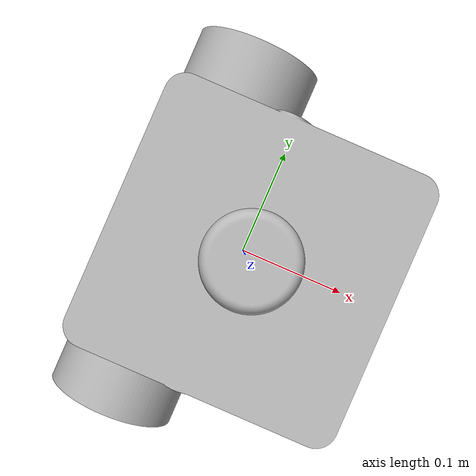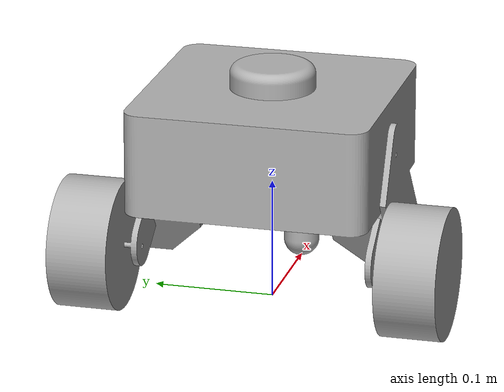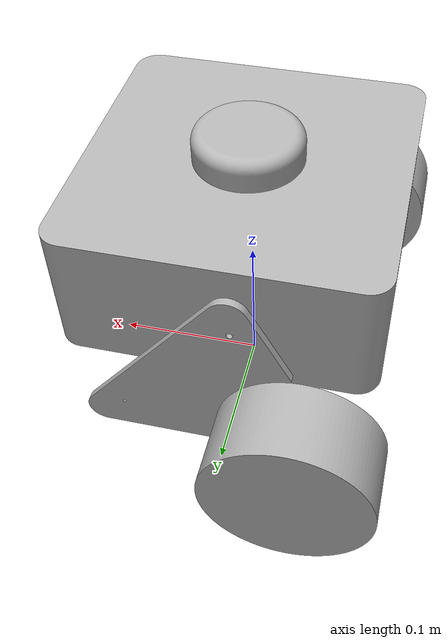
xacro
<?xml version="1.0" ?>
<robot name="walle" xmlns:xacro="http://www.ros.org/wiki/xacro">

<xacro:arg name="is_ignition" default="true"/>

<xacro:arg name="is_sim" default="true"/>

<xacro:include filename="$(find walle_description)/urdf/materials.xacro" />
<xacro:include filename="$(find walle_description)/urdf/walle_ros2_control.xacro" />
<xacro:include filename="$(find walle_description)/urdf/walle_gazebo.xacro" />

<link name="base_footprint"/>

<link name="base_link">
  <inertial>
    <origin xyz="-0.00045685530729292265 0.0004136281243083317 0.11948332647769622" rpy="0 0 0"/>
    <mass value="4.791704659790887"/>
    <inertia ixx="0.036131" iyy="0.02501" izz="0.044487" ixy="0.0" iyz="5e-06" ixz="-5.5e-05"/>
  </inertial>
  <visual>
    <origin xyz="0 0 -0.054001" rpy="0 0 0"/>
    <geometry>
      <mesh filename="file://$(find walle_description)/meshes/base_link.stl" scale="0.001 0.001 0.001"/>
    </geometry>
    <material name="silver"/>
  </visual>
  <collision>
    <origin xyz="0 0 0" rpy="0 0 0"/>
    <geometry>
      <mesh filename="file://$(find walle_description)/meshes/base_link.stl" scale="0.001 0.001 0.001"/>
    </geometry>
  </collision>
</link>

<joint name="base_joint" type="fixed">
  <parent link="base_footprint"/>
  <child link="base_link" />
  <origin xyz="0 0 0.054001" rpy="0 0 0"/>
</joint>

<link name="left_wheel_1">
  <inertial>
    <origin xyz="3.3467447201757095e-07 0.024999627663606278 1.808861906857362e-07" rpy="0 0 0"/>
    <mass value="3.5956470398131257"/>
    <inertia ixx="0.00337" iyy="0.005242" izz="0.00337" ixy="-0.0" iyz="0.0" ixz="0.0"/>
  </inertial>
  <visual>
    <origin xyz="0.055614 -0.110181 -0.054001" rpy="0 0 0"/>
    <geometry>
      <mesh filename="file://$(find walle_description)/meshes/left_wheel_1.stl" scale="0.001 0.001 0.001"/>
    </geometry>
    <material name="silver"/>
  </visual>
  <collision>
    <origin xyz="0.055614 -0.110181 -0.054001" rpy="0 0 0"/>
    <geometry>
      <mesh filename="file://$(find walle_description)/meshes/left_wheel_1.stl" scale="0.001 0.001 0.001"/>
    </geometry>
  </collision>
</link>

<link name="right_wheel_1">
  <inertial>
    <origin xyz="3.346744719828765e-07 -0.025000051385102237 1.8088619053308053e-07" rpy="0 0 0"/>
    <mass value="3.5956470398131253"/>
    <inertia ixx="0.00337" iyy="0.005242" izz="0.00337" ixy="0.0" iyz="0.0" ixz="-0.0"/>
  </inertial>
  <visual>
    <origin xyz="0.055614 0.109219 -0.054001" rpy="0 0 0"/>
    <geometry>
      <mesh filename="file://$(find walle_description)/meshes/right_wheel_1.stl" scale="0.001 0.001 0.001"/>
    </geometry>
    <material name="silver"/>
  </visual>
  <collision>
    <origin xyz="0.055614 0.109219 -0.054001" rpy="0 0 0"/>
    <geometry>
      <mesh filename="file://$(find walle_description)/meshes/right_wheel_1.stl" scale="0.001 0.001 0.001"/>
    </geometry>
  </collision>
</link>

<link name="caster_wheel_1">
  <inertial>
    <origin xyz="-7.153065921527979e-08 -1.1170202059618186e-07 -0.04496975521572788" rpy="0 0 0"/>
    <mass value="0.4982856545913868"/>
    <inertia ixx="0.000365" iyy="0.000365" izz="5.5e-05" ixy="0.0" iyz="0.0" ixz="-0.0"/>
  </inertial>
  <visual>
    <origin xyz="-0.101383 -0.00039 -0.094797" rpy="0 0 0"/>
    <geometry>
      <mesh filename="file://$(find walle_description)/meshes/caster_wheel_1.stl" scale="0.001 0.001 0.001"/>
    </geometry>
    <material name="silver"/>
  </visual>
  <collision>
    <origin xyz="-0.101383 -0.00039 -0.094797" rpy="0 0 0"/>
    <geometry>
      <mesh filename="file://$(find walle_description)/meshes/caster_wheel_1.stl" scale="0.001 0.001 0.001"/>
    </geometry>
  </collision>
</link>

<link name="lidar_1">
  <inertial>
    <origin xyz="-7.153065918145268e-08 -1.1170202091591308e-07 0.009718373123905694" rpy="0 0 0"/>
    <mass value="0.5843654094095093"/>
    <inertia ixx="0.000193" iyy="0.000193" izz="0.000348" ixy="0.0" iyz="0.0" ixz="-0.0"/>
  </inertial>
  <visual>
    <origin xyz="-0.001383 -0.00039 -0.179797" rpy="0 0 0"/>
    <geometry>
      <mesh filename="file://$(find walle_description)/meshes/lidar_1.stl" scale="0.001 0.001 0.001"/>
    </geometry>
    <material name="silver"/>
  </visual>
  <collision>
    <origin xyz="-0.001383 -0.00039 -0.179797" rpy="0 0 0"/>
    <geometry>
      <mesh filename="file://$(find walle_description)/meshes/lidar_1.stl" scale="0.001 0.001 0.001"/>
    </geometry>
  </collision>
</link>

<link name="imu_1">
  <inertial>
    <origin xyz="-7.153065904527689e-08 1.3403373669393544e-07 -0.0024998122926913197" rpy="0 0 0"/>
    <mass value="0.007290803052000012"/>
    <inertia ixx="0.0" iyy="0.0" izz="0.0" ixy="-0.0" iyz="0.0" ixz="0.0"/>
  </inertial>
  <visual>
    <origin xyz="0.021117 -0.000222 -0.089797" rpy="0 0 0"/>
    <geometry>
      <mesh filename="file://$(find walle_description)/meshes/imu_1.stl" scale="0.001 0.001 0.001"/>
    </geometry>
    <material name="silver"/>
  </visual>
  <collision>
    <origin xyz="0.021117 -0.000222 -0.089797" rpy="0 0 0"/>
    <geometry>
      <mesh filename="file://$(find walle_description)/meshes/imu_1.stl" scale="0.001 0.001 0.001"/>
    </geometry>
  </collision>
</link>

<joint name="left_wheel_joint" type="continuous">
  <origin xyz="-0.055614 0.110181 0" rpy="0 0 0"/>
  <parent link="base_link"/>
  <child link="left_wheel_1"/>
  <axis xyz="-0.0 1.0 0.0"/>
</joint>

<joint name="right_wheel_joint" type="continuous">
  <origin xyz="-0.055614 -0.109219 0" rpy="0 0 0"/>
  <parent link="base_link"/>
  <child link="right_wheel_1"/>
  <axis xyz="0.0 -1.0 -0.0"/>
</joint>

<joint name="caster_wheel_joint" type="fixed">
  <origin xyz="0.101383 0.00039 0.0400" rpy="0 0 0"/>
  <parent link="base_link"/>
  <child link="caster_wheel_1"/>
</joint>

<joint name="lidar_joint" type="fixed">
  <origin xyz="0.001383 0.00039 0.12600" rpy="0 0 0"/>
  <parent link="base_link"/>
  <child link="lidar_1"/>
</joint>

<joint name="imu_joint" type="fixed">
  <origin xyz="-0.021117 0.000222 0.0600" rpy="0 0 0"/>
  <parent link="base_link"/>
  <child link="imu_1"/>
</joint>

</robot>

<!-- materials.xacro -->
<robot name="walle" xmlns:xacro="http://www.ros.org/wiki/xacro" >

<material name="silver">
  <color rgba="0.700 0.700 0.700 1.000"/>
</material>

</robot>

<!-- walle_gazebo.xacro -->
<robot name="walle" xmlns:xacro="http://www.ros.org/wiki/xacro" >

<xacro:property name="body_color" value="Gazebo/Silver" />

<gazebo reference="base_link">
  <material>${body_color}</material>
  <mu1>0.2</mu1>
  <mu2>0.2</mu2>
  <self_collide>true</self_collide>
  <gravity>true</gravity>
</gazebo>

<gazebo reference="left_wheel_1">
  <material>${body_color}</material>
  <mu1>0.2</mu1>
  <mu2>0.2</mu2>
  <self_collide>true</self_collide>
</gazebo>

<gazebo reference="right_wheel_1">
  <material>${body_color}</material>
  <mu1>0.2</mu1>
  <mu2>0.2</mu2>
  <self_collide>true</self_collide>
</gazebo>

<gazebo reference="caster_wheel_1">
  <material>${body_color}</material>
  <mu1>0.2</mu1>
  <mu2>0.2</mu2>
  <self_collide>true</self_collide>
</gazebo>

<gazebo reference="lidar_1">
  <material>${body_color}</material>
  <mu1>0.2</mu1>
  <mu2>0.2</mu2>
  <self_collide>true</self_collide>
</gazebo>

<gazebo reference="imu_1">
  <material>${body_color}</material>
  <mu1>0.2</mu1>
  <mu2>0.2</mu2>
  <self_collide>true</self_collide>
</gazebo>

  <gazebo>
    <xacro:if value="$(arg is_ignition)">
      <plugin filename="ign_ros2_control-system" name="ign_ros2_control::IgnitionROS2ControlPlugin">
        <parameters>$(find walle_controller)/config/walle_controllers.yaml</parameters>
      </plugin>
      <plugin filename="ignition-gazebo-imu-system" name="ignition::gazebo::systems::Imu">
      </plugin>
      <plugin filename="ignition-gazebo-sensors-system" name="ignition::gazebo::systems::Sensors">
        <render_engine>ogre2</render_engine>
      </plugin>
    </xacro:if>

    <xacro:unless value="$(arg is_ignition)">
      <plugin filename="gz_ros2_control-system" name="gz_ros2_control::GazeboSimROS2ControlPlugin">
        <parameters>$(find walle_controller)/config/walle_controllers.yaml</parameters>
      </plugin>
       <plugin filename="gz-sim-imu-system" name="gz::sim::systems::Imu">
      </plugin>
      <plugin filename="gz-sim-sensors-system" name="gz::sim::systems::Sensors">
        <render_engine>ogre2</render_engine>
      </plugin>
    </xacro:unless>
  </gazebo>

  <gazebo reference="imu_1">
   <sensor name="imu" type="imu">
     <always_on>true</always_on>
     <update_rate>100</update_rate>
     <gz_frame_id>imu_1</gz_frame_id>
     <topic>imu</topic>
     <imu>
      <angular_velocity>
        <x>
          <noise type="gaussian">
            <mean>0.0</mean>
            <stddev>2e-4</stddev>
          </noise>
        </x>
        <y>
          <noise type="gaussian">
            <mean>0.0</mean>
            <stddev>2e-4</stddev>
          </noise>

        </y>
        <z>
          <noise type="gaussian">
            <mean>0.0</mean>
            <stddev>2e-4</stddev>
          </noise>

        </z>
      </angular_velocity>
      <linear_acceleration>
        <x>
          <noise type="gaussian">
            <mean>0.0</mean>
            <stddev>1.7e-2</stddev>
          </noise>
        </x>
        <y>
          <noise type="gaussian">
            <mean>0.0</mean>
            <stddev>1.7e-2</stddev>
          </noise>

        </y>
        <z>
          <noise type="gaussian">
            <mean>0.0</mean>
            <stddev>1.7e-2</stddev>
          </noise>

        </z>
      </linear_acceleration>
    </imu>
   </sensor>
  </gazebo>

  <gazebo reference="lidar_1">
    <sensor name="lidar" type="gpu_lidar">
      <always_on>true</always_on>
      <visualize>true</visualize>
      <topic>scan</topic>
      <update_rate>5</update_rate>
      <gz_frame_id>lidar_1</gz_frame_id>
      <lidar>
        <scan>
          <horizontal>
            <samples>360</samples>
            <resolution>1.00000</resolution>
            <min_angle>0.000000</min_angle>
            <max_angle>6.280000</max_angle>
          </horizontal>
        </scan>
        <range>
          <min>0.200000</min>
          <max>12.0</max>
          <resolution>0.02</resolution>
        </range>
        <noise>
          <type>gaussian</type>
          <mean>0.0</mean>
          <stddev>0.01</stddev>
        </noise>
        </lidar>
    </sensor>
  </gazebo>

</robot>
